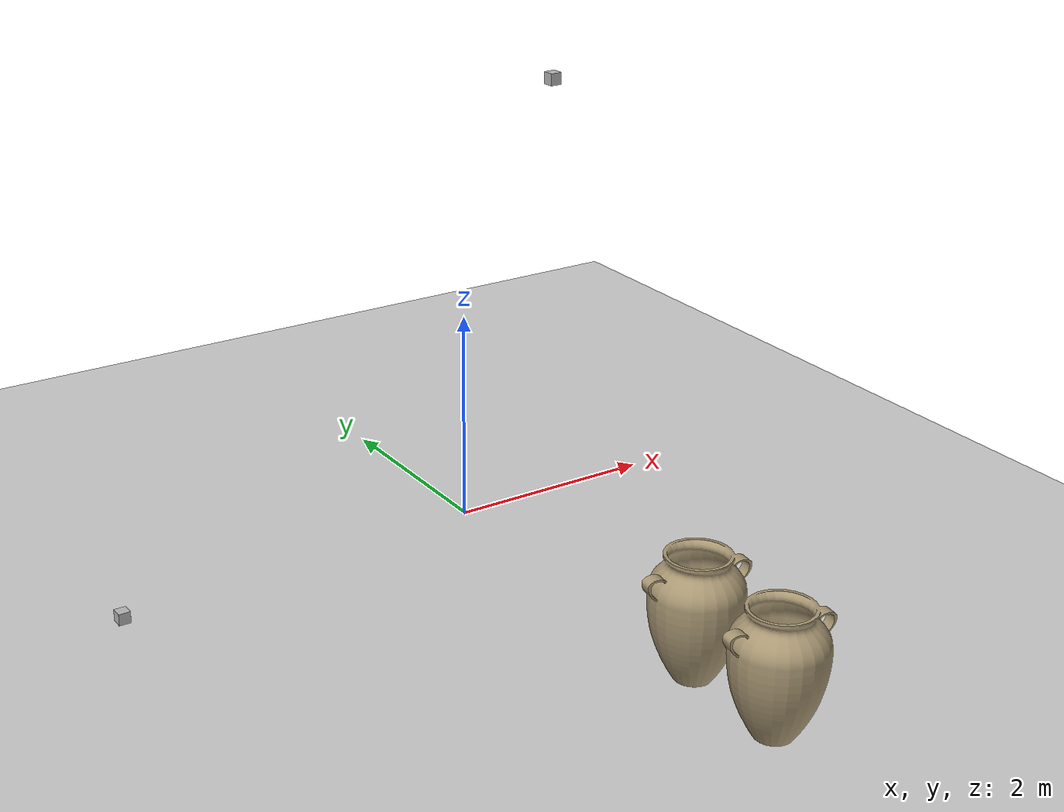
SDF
<sdf version="1.4">
 <world name="default">
  <physics type="ode">
   <max_step_size>0.0001</max_step_size>
   <real_time_factor>1</real_time_factor>
   <real_time_update_rate>1000</real_time_update_rate>
   <gravity>0 0 -9.8</gravity>
  </physics>
  <wind><linear_velocity>0 0 0</linear_velocity></wind>
  <include><uri>model://ground_plane</uri></include>
  <include><uri>model://sun</uri></include>
  <include><uri>model://vase_large_2</uri><name>vase_large_2</name><pose>0 -3.5 0.0 0 0 0</pose></include>
  <include><uri>model://vase_large_2</uri><name>vase_large_3</name><pose>0 -4.5 0.0 0 0 0</pose></include>
  <include><uri>model://side_camera</uri><name>side_camera</name><pose>-4.0 -1.37 0.76 0 0 0</pose></include>
  <include>
   <uri>model://camera</uri>
   <name>camera</name>
   <pose>0 -1.37 4.5 0 1.571 0</pose>
   <gravity>false</gravity>
  </include>
 </world>
</sdf>

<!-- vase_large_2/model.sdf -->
<sdf version='1.6'>
  <model name='vase_large_2'>
    <link name='link_31'>
      <pose frame=''>0 0 0 0 -0 0</pose>

      <visual name='visual'>
        <pose frame=''>0 0 0 0 -0 0</pose>
        <geometry>
          <mesh>
            <uri>model://vase_large_2/meshes/vase3_1.dae</uri>
            <scale>1.6 1.6 1</scale>
          </mesh>
        </geometry>
    <material>
          <script>
            <uri>model://vase_large_2/materials/scripts</uri>
            <uri>model://vase_large_2/materials/textures</uri>
            <name>vase_pattern2</name>
          </script>
        </material>
        <cast_shadows>1</cast_shadows>
        <transparency>0</transparency>
      </visual>
      <collision name='collision'>
        <laser_retro>0</laser_retro>
        <max_contacts>10</max_contacts>
        <pose frame=''>0 0 0 0 -0 0</pose>
        <geometry>
          <mesh>
            <uri>model://vase_large_2/meshes/vase3_1.dae</uri>
            <scale>1.6 1.6 1</scale>
          </mesh>
        </geometry>
      </collision>
    </link>
    <static>1</static>
    <allow_auto_disable>1</allow_auto_disable>
  </model>
</sdf>

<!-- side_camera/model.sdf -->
<sdf version="1.5">
  <model name="side_camera">
    <link name="link">
      <gravity>0</gravity>
      <inertial>
        <mass>0.1</mass>
        <inertia>
          <ixx>0.000</ixx>
          <iyy>0.000</iyy>
          <izz>0.000</izz>
        </inertia>
      </inertial>
      <collision name="collision">
        <geometry>
          <box>
            <size>0.1 0.1 0.1</size>
          </box>
        </geometry>
      </collision>
      <visual name="visual">
        <geometry>
          <box>
            <size>0.1 0.1 0.1</size>
          </box>
        </geometry>
      </visual>
      <sensor name="side_camera" type="camera">
        <camera>
          <horizontal_fov>1.047</horizontal_fov>
          <image>
            <width>720</width>
            <height>480</height>
          </image>
          <clip>
            <near>0.1</near>
            <far>100</far>
          </clip>
        </camera>
        <always_on>1</always_on>
        <update_rate>60</update_rate>
        <visualize>true</visualize>
        <plugin name="camera_controller" filename="libgazebo_ros_camera.so">
          <alwaysOn>true</alwaysOn>
          <updateRate>60.0</updateRate>
          <cameraName>pp/side_camera</cameraName>
          <imageTopicName>image_raw</imageTopicName>
          <cameraInfoTopicName>camera_info</cameraInfoTopicName>
          <frameName>side_camera_link</frameName>
          <hackBaseline>0.07</hackBaseline>
          <distortionK1>0.0</distortionK1>
          <distortionK2>0.0</distortionK2>
          <distortionK3>0.0</distortionK3>
          <distortionT1>0.0</distortionT1>
          <distortionT2>0.0</distortionT2>
        </plugin>
      </sensor>
    </link>
  </model>
</sdf>

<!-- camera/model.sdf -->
<sdf version="1.5">
  <model name="camera">
    <pose>0 0 0.05 0 0 0</pose>
    <link name="link">
      <inertial>
        <mass>0.1</mass>
        <inertia>
          <ixx>0.000166667</ixx>
          <iyy>0.000166667</iyy>
          <izz>0.000166667</izz>
        </inertia>
      </inertial>
      <collision name="collision">
        <geometry>
          <box>
            <size>0.1 0.1 0.1</size>
          </box>
        </geometry>
      </collision>
      <visual name="visual">
        <geometry>
          <box>
            <size>0.1 0.1 0.1</size>
          </box>
        </geometry>
      </visual>
      <sensor name="camera" type="camera">
        <camera>
          <horizontal_fov>1.047</horizontal_fov>
          <image>
            <width>320</width>
            <height>240</height>
          </image>
          <clip>
            <near>0.1</near>
            <far>100</far>
          </clip>
        </camera>
        <always_on>1</always_on>
        <update_rate>30</update_rate>
        <visualize>true</visualize>
      </sensor>
    </link>
  </model>
</sdf>
